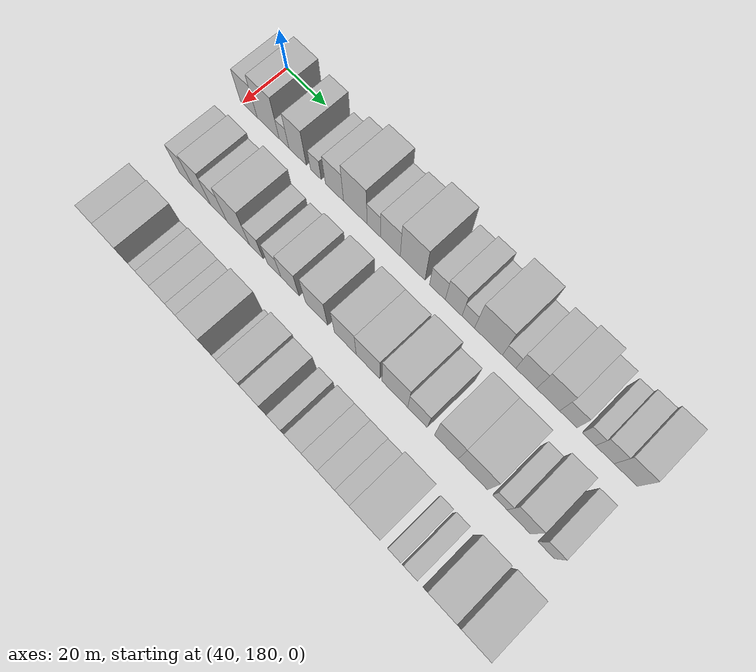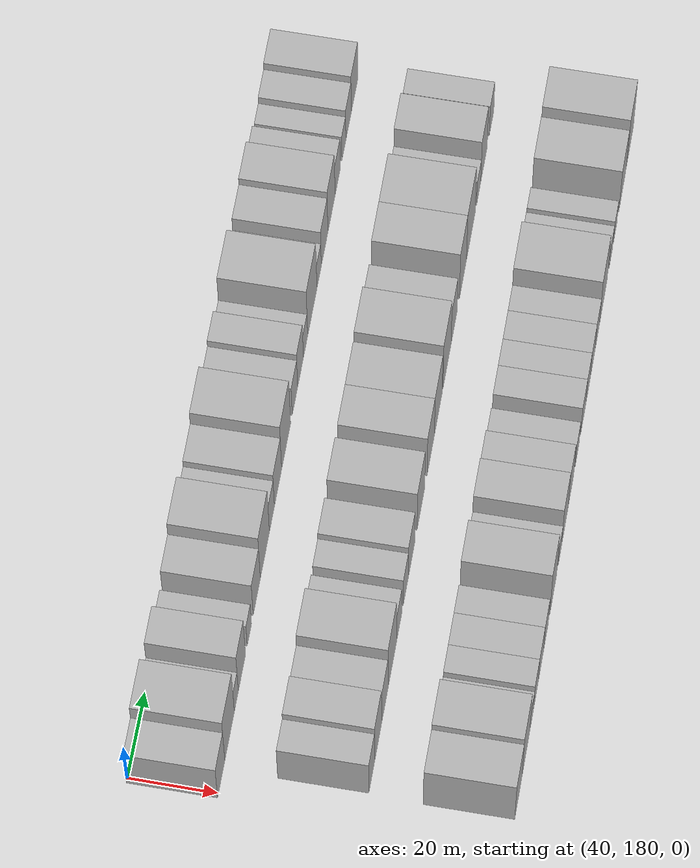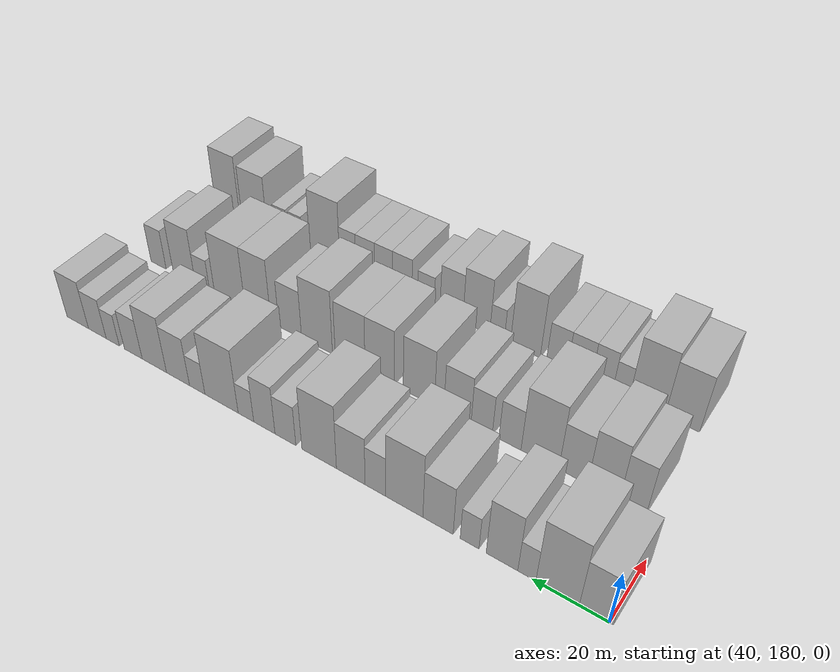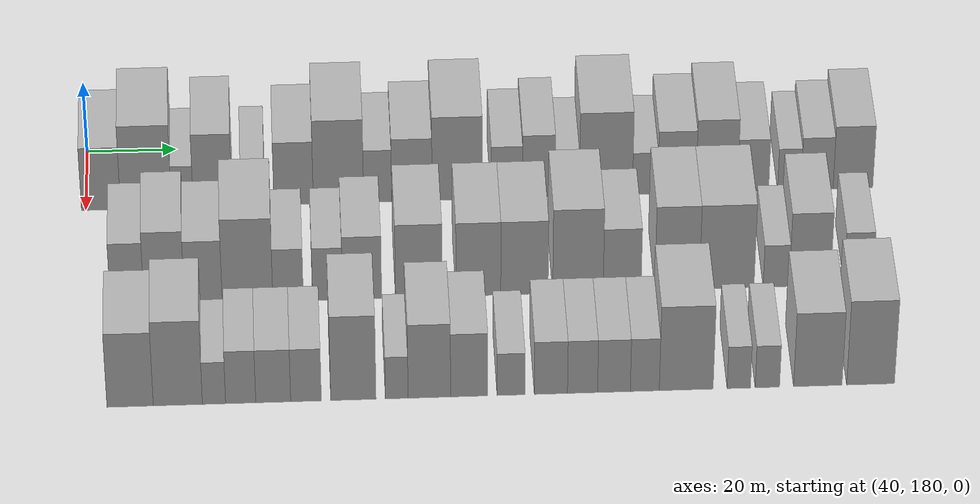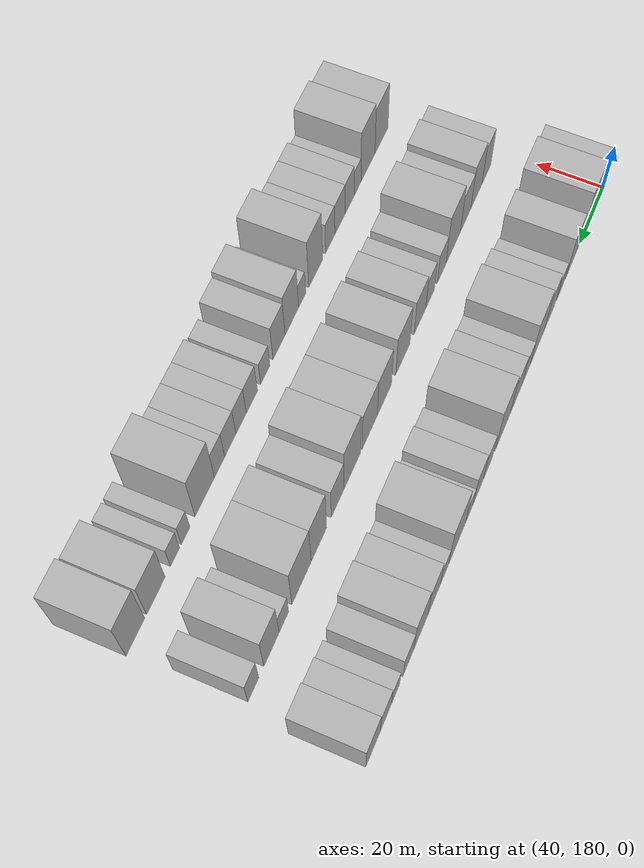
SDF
<sdf version="1.6">
 <world name="default">
  <model name="building_60">
   <static>1</static>
   <pose>50.0000 183.2740 0 0.000000 0.000000 0.000000</pose>
   <link name="link">
    <pose>0 0 9.00 0 0 0</pose>
    <collision name="collision"><geometry><box><size>20.0000 8.6550 18.0000</size></box></geometry></collision>
    <visual name="visual">
     <cast_shadows>0</cast_shadows>
     <geometry><box><size>20.0000 8.6550 18.0000</size></box></geometry>
     <material>
      <script>
       <uri>model://HANNAS_wall/materials/scripts</uri>
       <uri>model://HANNAS_wall/materials/textures</uri>
       <name>vrc/HANNAS_wall</name>
      </script>
     </material>
    </visual>
   </link>
  </model>
  <model name="building_61">
   <static>1</static>
   <pose>50.0000 193.2526 0 0.000000 0.000000 0.000000</pose>
   <link name="link">
    <pose>0 0 12.00 0 0 0</pose>
    <collision name="collision"><geometry><box><size>20.0000 11.3021 24.0000</size></box></geometry></collision>
    <visual name="visual">
     <cast_shadows>0</cast_shadows>
     <geometry><box><size>20.0000 11.3021 24.0000</size></box></geometry>
     <material>
      <script>
       <uri>model://HANNAS_wall/materials/scripts</uri>
       <uri>model://HANNAS_wall/materials/textures</uri>
       <name>vrc/HANNAS_wall</name>
      </script>
     </material>
    </visual>
   </link>
  </model>
  <model name="building_62">
   <static>1</static>
   <pose>50.0000 201.3147 0 0.000000 0.000000 0.000000</pose>
   <link name="link">
    <pose>0 0 6.00 0 0 0</pose>
    <collision name="collision"><geometry><box><size>20.0000 4.8221 12.0000</size></box></geometry></collision>
    <visual name="visual">
     <cast_shadows>0</cast_shadows>
     <geometry><box><size>20.0000 4.8221 12.0000</size></box></geometry>
     <material>
      <script>
       <uri>model://HANNAS_wall/materials/scripts</uri>
       <uri>model://HANNAS_wall/materials/textures</uri>
       <name>vrc/HANNAS_wall</name>
      </script>
     </material>
    </visual>
   </link>
  </model>
  <model name="building_63">
   <static>1</static>
   <pose>50.0000 208.0464 0 0.000000 0.000000 0.000000</pose>
   <link name="link">
    <pose>0 0 10.50 0 0 0</pose>
    <collision name="collision"><geometry><box><size>20.0000 8.6414 21.0000</size></box></geometry></collision>
    <visual name="visual">
     <cast_shadows>0</cast_shadows>
     <geometry><box><size>20.0000 8.6414 21.0000</size></box></geometry>
     <material>
      <script>
       <uri>model://HANNAS_wall/materials/scripts</uri>
       <uri>model://HANNAS_wall/materials/textures</uri>
       <name>vrc/HANNAS_wall</name>
      </script>
     </material>
    </visual>
   </link>
  </model>
  <model name="building_64">
   <static>1</static>
   <pose>50.0000 217.0051 0 0.000000 0.000000 0.000000</pose>
   <link name="link">
    <pose>0 0 6.00 0 0 0</pose>
    <collision name="collision"><geometry><box><size>20.0000 5.2760 12.0000</size></box></geometry></collision>
    <visual name="visual">
     <cast_shadows>0</cast_shadows>
     <geometry><box><size>20.0000 5.2760 12.0000</size></box></geometry>
     <material>
      <script>
       <uri>model://HANNAS_wall/materials/scripts</uri>
       <uri>model://HANNAS_wall/materials/textures</uri>
       <name>vrc/HANNAS_wall</name>
      </script>
     </material>
    </visual>
   </link>
  </model>
  <model name="building_65">
   <static>1</static>
   <pose>50.0000 226.0107 0 0.000000 0.000000 0.000000</pose>
   <link name="link">
    <pose>0 0 9.00 0 0 0</pose>
    <collision name="collision"><geometry><box><size>20.0000 8.7353 18.0000</size></box></geometry></collision>
    <visual name="visual">
     <cast_shadows>0</cast_shadows>
     <geometry><box><size>20.0000 8.7353 18.0000</size></box></geometry>
     <material>
      <script>
       <uri>model://HANNAS_wall/materials/scripts</uri>
       <uri>model://HANNAS_wall/materials/textures</uri>
       <name>vrc/HANNAS_wall</name>
      </script>
     </material>
    </visual>
   </link>
  </model>
  <model name="building_66">
   <static>1</static>
   <pose>50.0000 235.9674 0 0.000000 0.000000 0.000000</pose>
   <link name="link">
    <pose>0 0 12.00 0 0 0</pose>
    <collision name="collision"><geometry><box><size>20.0000 11.1779 24.0000</size></box></geometry></collision>
    <visual name="visual">
     <cast_shadows>0</cast_shadows>
     <geometry><box><size>20.0000 11.1779 24.0000</size></box></geometry>
     <material>
      <script>
       <uri>model://HANNAS_wall/materials/scripts</uri>
       <uri>model://HANNAS_wall/materials/textures</uri>
       <name>vrc/HANNAS_wall</name>
      </script>
     </material>
    </visual>
   </link>
  </model>
  <model name="building_67">
   <static>1</static>
   <pose>50.0000 244.6649 0 0.000000 0.000000 0.000000</pose>
   <link name="link">
    <pose>0 0 7.50 0 0 0</pose>
    <collision name="collision"><geometry><box><size>20.0000 6.2172 15.0000</size></box></geometry></collision>
    <visual name="visual">
     <cast_shadows>0</cast_shadows>
     <geometry><box><size>20.0000 6.2172 15.0000</size></box></geometry>
     <material>
      <script>
       <uri>model://HANNAS_wall/materials/scripts</uri>
       <uri>model://HANNAS_wall/materials/textures</uri>
       <name>vrc/HANNAS_wall</name>
      </script>
     </material>
    </visual>
   </link>
  </model>
  <model name="building_68">
   <static>1</static>
   <pose>50.0000 252.2728 0 0.000000 0.000000 0.000000</pose>
   <link name="link">
    <pose>0 0 9.00 0 0 0</pose>
    <collision name="collision"><geometry><box><size>20.0000 8.9987 18.0000</size></box></geometry></collision>
    <visual name="visual">
     <cast_shadows>0</cast_shadows>
     <geometry><box><size>20.0000 8.9987 18.0000</size></box></geometry>
     <material>
      <script>
       <uri>model://HANNAS_wall/materials/scripts</uri>
       <uri>model://HANNAS_wall/materials/textures</uri>
       <name>vrc/HANNAS_wall</name>
      </script>
     </material>
    </visual>
   </link>
  </model>
  <model name="building_69">
   <static>1</static>
   <pose>50.0000 262.3515 0 0.000000 0.000000 0.000000</pose>
   <link name="link">
    <pose>0 0 12.00 0 0 0</pose>
    <collision name="collision"><geometry><box><size>20.0000 11.1586 24.0000</size></box></geometry></collision>
    <visual name="visual">
     <cast_shadows>0</cast_shadows>
     <geometry><box><size>20.0000 11.1586 24.0000</size></box></geometry>
     <material>
      <script>
       <uri>model://HANNAS_wall/materials/scripts</uri>
       <uri>model://HANNAS_wall/materials/textures</uri>
       <name>vrc/HANNAS_wall</name>
      </script>
     </material>
    </visual>
   </link>
  </model>
  <model name="building_70">
   <static>1</static>
   <pose>50.0000 273.4029 0 0.000000 0.000000 0.000000</pose>
   <link name="link">
    <pose>0 0 7.50 0 0 0</pose>
    <collision name="collision"><geometry><box><size>20.0000 6.9441 15.0000</size></box></geometry></collision>
    <visual name="visual">
     <cast_shadows>0</cast_shadows>
     <geometry><box><size>20.0000 6.9441 15.0000</size></box></geometry>
     <material>
      <script>
       <uri>model://HANNAS_wall/materials/scripts</uri>
       <uri>model://HANNAS_wall/materials/textures</uri>
       <name>vrc/HANNAS_wall</name>
      </script>
     </material>
    </visual>
   </link>
  </model>
  <model name="building_71">
   <static>1</static>
   <pose>50.0000 280.5089 0 0.000000 0.000000 0.000000</pose>
   <link name="link">
    <pose>0 0 9.00 0 0 0</pose>
    <collision name="collision"><geometry><box><size>20.0000 7.2680 18.0000</size></box></geometry></collision>
    <visual name="visual">
     <cast_shadows>0</cast_shadows>
     <geometry><box><size>20.0000 7.2680 18.0000</size></box></geometry>
     <material>
      <script>
       <uri>model://HANNAS_wall/materials/scripts</uri>
       <uri>model://HANNAS_wall/materials/textures</uri>
       <name>vrc/HANNAS_wall</name>
      </script>
     </material>
    </visual>
   </link>
  </model>
  <model name="building_72">
   <static>1</static>
   <pose>50.0000 286.8468 0 0.000000 0.000000 0.000000</pose>
   <link name="link">
    <pose>0 0 6.00 0 0 0</pose>
    <collision name="collision"><geometry><box><size>20.0000 5.4077 12.0000</size></box></geometry></collision>
    <visual name="visual">
     <cast_shadows>0</cast_shadows>
     <geometry><box><size>20.0000 5.4077 12.0000</size></box></geometry>
     <material>
      <script>
       <uri>model://HANNAS_wall/materials/scripts</uri>
       <uri>model://HANNAS_wall/materials/textures</uri>
       <name>vrc/HANNAS_wall</name>
      </script>
     </material>
    </visual>
   </link>
  </model>
  <model name="building_73">
   <static>1</static>
   <pose>50.0000 295.4719 0 0.000000 0.000000 0.000000</pose>
   <link name="link">
    <pose>0 0 12.00 0 0 0</pose>
    <collision name="collision"><geometry><box><size>20.0000 11.8426 24.0000</size></box></geometry></collision>
    <visual name="visual">
     <cast_shadows>0</cast_shadows>
     <geometry><box><size>20.0000 11.8426 24.0000</size></box></geometry>
     <material>
      <script>
       <uri>model://HANNAS_wall/materials/scripts</uri>
       <uri>model://HANNAS_wall/materials/textures</uri>
       <name>vrc/HANNAS_wall</name>
      </script>
     </material>
    </visual>
   </link>
  </model>
  <model name="building_74">
   <static>1</static>
   <pose>50.0000 304.2046 0 0.000000 0.000000 0.000000</pose>
   <link name="link">
    <pose>0 0 6.00 0 0 0</pose>
    <collision name="collision"><geometry><box><size>20.0000 5.6226 12.0000</size></box></geometry></collision>
    <visual name="visual">
     <cast_shadows>0</cast_shadows>
     <geometry><box><size>20.0000 5.6226 12.0000</size></box></geometry>
     <material>
      <script>
       <uri>model://HANNAS_wall/materials/scripts</uri>
       <uri>model://HANNAS_wall/materials/textures</uri>
       <name>vrc/HANNAS_wall</name>
      </script>
     </material>
    </visual>
   </link>
  </model>
  <model name="building_75">
   <static>1</static>
   <pose>50.0000 311.2909 0 0.000000 0.000000 0.000000</pose>
   <link name="link">
    <pose>0 0 9.00 0 0 0</pose>
    <collision name="collision"><geometry><box><size>20.0000 8.5500 18.0000</size></box></geometry></collision>
    <visual name="visual">
     <cast_shadows>0</cast_shadows>
     <geometry><box><size>20.0000 8.5500 18.0000</size></box></geometry>
     <material>
      <script>
       <uri>model://HANNAS_wall/materials/scripts</uri>
       <uri>model://HANNAS_wall/materials/textures</uri>
       <name>vrc/HANNAS_wall</name>
      </script>
     </material>
    </visual>
   </link>
  </model>
  <model name="building_76">
   <static>1</static>
   <pose>50.0000 320.2099 0 0.000000 0.000000 0.000000</pose>
   <link name="link">
    <pose>0 0 10.50 0 0 0</pose>
    <collision name="collision"><geometry><box><size>20.0000 9.2882 21.0000</size></box></geometry></collision>
    <visual name="visual">
     <cast_shadows>0</cast_shadows>
     <geometry><box><size>20.0000 9.2882 21.0000</size></box></geometry>
     <material>
      <script>
       <uri>model://HANNAS_wall/materials/scripts</uri>
       <uri>model://HANNAS_wall/materials/textures</uri>
       <name>vrc/HANNAS_wall</name>
      </script>
     </material>
    </visual>
   </link>
  </model>
  <model name="building_77">
   <static>1</static>
   <pose>50.0000 328.3287 0 0.000000 0.000000 0.000000</pose>
   <link name="link">
    <pose>0 0 7.50 0 0 0</pose>
    <collision name="collision"><geometry><box><size>20.0000 6.9493 15.0000</size></box></geometry></collision>
    <visual name="visual">
     <cast_shadows>0</cast_shadows>
     <geometry><box><size>20.0000 6.9493 15.0000</size></box></geometry>
     <material>
      <script>
       <uri>model://HANNAS_wall/materials/scripts</uri>
       <uri>model://HANNAS_wall/materials/textures</uri>
       <name>vrc/HANNAS_wall</name>
      </script>
     </material>
    </visual>
   </link>
  </model>
  <model name="building_78">
   <static>1</static>
   <pose>50.0000 336.4179 0 0.000000 0.000000 0.000000</pose>
   <link name="link">
    <pose>0 0 6.00 0 0 0</pose>
    <collision name="collision"><geometry><box><size>20.0000 5.2292 12.0000</size></box></geometry></collision>
    <visual name="visual">
     <cast_shadows>0</cast_shadows>
     <geometry><box><size>20.0000 5.2292 12.0000</size></box></geometry>
     <material>
      <script>
       <uri>model://HANNAS_wall/materials/scripts</uri>
       <uri>model://HANNAS_wall/materials/textures</uri>
       <name>vrc/HANNAS_wall</name>
      </script>
     </material>
    </visual>
   </link>
  </model>
  <model name="building_79">
   <static>1</static>
   <pose>50.0000 342.6247 0 0.000000 0.000000 0.000000</pose>
   <link name="link">
    <pose>0 0 7.50 0 0 0</pose>
    <collision name="collision"><geometry><box><size>20.0000 7.1845 15.0000</size></box></geometry></collision>
    <visual name="visual">
     <cast_shadows>0</cast_shadows>
     <geometry><box><size>20.0000 7.1845 15.0000</size></box></geometry>
     <material>
      <script>
       <uri>model://HANNAS_wall/materials/scripts</uri>
       <uri>model://HANNAS_wall/materials/textures</uri>
       <name>vrc/HANNAS_wall</name>
      </script>
     </material>
    </visual>
   </link>
  </model>
  <model name="building_80">
   <static>1</static>
   <pose>50.0000 350.6467 0 0.000000 0.000000 0.000000</pose>
   <link name="link">
    <pose>0 0 9.00 0 0 0</pose>
    <collision name="collision"><geometry><box><size>20.0000 8.8594 18.0000</size></box></geometry></collision>
    <visual name="visual">
     <cast_shadows>0</cast_shadows>
     <geometry><box><size>20.0000 8.8594 18.0000</size></box></geometry>
     <material>
      <script>
       <uri>model://HANNAS_wall/materials/scripts</uri>
       <uri>model://HANNAS_wall/materials/textures</uri>
       <name>vrc/HANNAS_wall</name>
      </script>
     </material>
    </visual>
   </link>
  </model>
  <model name="building_142">
   <static>1</static>
   <pose>82.0000 189.2211 0 0.000000 0.000000 0.000000</pose>
   <link name="link">
    <pose>0 0 9.00 0 0 0</pose>
    <collision name="collision"><geometry><box><size>20.0000 7.2849 18.0000</size></box></geometry></collision>
    <visual name="visual">
     <cast_shadows>0</cast_shadows>
     <geometry><box><size>20.0000 7.2849 18.0000</size></box></geometry>
     <material>
      <script>
       <uri>model://HANNAS_wall/materials/scripts</uri>
       <uri>model://HANNAS_wall/materials/textures</uri>
       <name>vrc/HANNAS_wall</name>
      </script>
     </material>
    </visual>
   </link>
  </model>
  <model name="building_143">
   <static>1</static>
   <pose>82.0000 197.2592 0 0.000000 0.000000 0.000000</pose>
   <link name="link">
    <pose>0 0 10.50 0 0 0</pose>
    <collision name="collision"><geometry><box><size>20.0000 8.7913 21.0000</size></box></geometry></collision>
    <visual name="visual">
     <cast_shadows>0</cast_shadows>
     <geometry><box><size>20.0000 8.7913 21.0000</size></box></geometry>
     <material>
      <script>
       <uri>model://HANNAS_wall/materials/scripts</uri>
       <uri>model://HANNAS_wall/materials/textures</uri>
       <name>vrc/HANNAS_wall</name>
      </script>
     </material>
    </visual>
   </link>
  </model>
  <model name="building_144">
   <static>1</static>
   <pose>82.0000 205.7654 0 0.000000 0.000000 0.000000</pose>
   <link name="link">
    <pose>0 0 9.00 0 0 0</pose>
    <collision name="collision"><geometry><box><size>20.0000 8.2211 18.0000</size></box></geometry></collision>
    <visual name="visual">
     <cast_shadows>0</cast_shadows>
     <geometry><box><size>20.0000 8.2211 18.0000</size></box></geometry>
     <material>
      <script>
       <uri>model://HANNAS_wall/materials/scripts</uri>
       <uri>model://HANNAS_wall/materials/textures</uri>
       <name>vrc/HANNAS_wall</name>
      </script>
     </material>
    </visual>
   </link>
  </model>
  <model name="building_145">
   <static>1</static>
   <pose>82.0000 215.3811 0 0.000000 0.000000 0.000000</pose>
   <link name="link">
    <pose>0 0 12.00 0 0 0</pose>
    <collision name="collision"><geometry><box><size>20.0000 11.0102 24.0000</size></box></geometry></collision>
    <visual name="visual">
     <cast_shadows>0</cast_shadows>
     <geometry><box><size>20.0000 11.0102 24.0000</size></box></geometry>
     <material>
      <script>
       <uri>model://HANNAS_wall/materials/scripts</uri>
       <uri>model://HANNAS_wall/materials/textures</uri>
       <name>vrc/HANNAS_wall</name>
      </script>
     </material>
    </visual>
   </link>
  </model>
  <model name="building_146">
   <static>1</static>
   <pose>82.0000 224.2107 0 0.000000 0.000000 0.000000</pose>
   <link name="link">
    <pose>0 0 7.50 0 0 0</pose>
    <collision name="collision"><geometry><box><size>20.0000 6.6491 15.0000</size></box></geometry></collision>
    <visual name="visual">
     <cast_shadows>0</cast_shadows>
     <geometry><box><size>20.0000 6.6491 15.0000</size></box></geometry>
     <material>
      <script>
       <uri>model://HANNAS_wall/materials/scripts</uri>
       <uri>model://HANNAS_wall/materials/textures</uri>
       <name>vrc/HANNAS_wall</name>
      </script>
     </material>
    </visual>
   </link>
  </model>
  <model name="building_147">
   <static>1</static>
   <pose>82.0000 232.8000 0 0.000000 0.000000 0.000000</pose>
   <link name="link">
    <pose>0 0 7.50 0 0 0</pose>
    <collision name="collision"><geometry><box><size>20.0000 6.5293 15.0000</size></box></geometry></collision>
    <visual name="visual">
     <cast_shadows>0</cast_shadows>
     <geometry><box><size>20.0000 6.5293 15.0000</size></box></geometry>
     <material>
      <script>
       <uri>model://HANNAS_wall/materials/scripts</uri>
       <uri>model://HANNAS_wall/materials/textures</uri>
       <name>vrc/HANNAS_wall</name>
      </script>
     </material>
    </visual>
   </link>
  </model>
  <model name="building_148">
   <static>1</static>
   <pose>82.0000 240.3248 0 0.000000 0.000000 0.000000</pose>
   <link name="link">
    <pose>0 0 9.00 0 0 0</pose>
    <collision name="collision"><geometry><box><size>20.0000 8.5203 18.0000</size></box></geometry></collision>
    <visual name="visual">
     <cast_shadows>0</cast_shadows>
     <geometry><box><size>20.0000 8.5203 18.0000</size></box></geometry>
     <material>
      <script>
       <uri>model://HANNAS_wall/materials/scripts</uri>
       <uri>model://HANNAS_wall/materials/textures</uri>
       <name>vrc/HANNAS_wall</name>
      </script>
     </material>
    </visual>
   </link>
  </model>
  <model name="building_149">
   <static>1</static>
   <pose>82.0000 252.6796 0 0.000000 0.000000 0.000000</pose>
   <link name="link">
    <pose>0 0 10.50 0 0 0</pose>
    <collision name="collision"><geometry><box><size>20.0000 10.1893 21.0000</size></box></geometry></collision>
    <visual name="visual">
     <cast_shadows>0</cast_shadows>
     <geometry><box><size>20.0000 10.1893 21.0000</size></box></geometry>
     <material>
      <script>
       <uri>model://HANNAS_wall/materials/scripts</uri>
       <uri>model://HANNAS_wall/materials/textures</uri>
       <name>vrc/HANNAS_wall</name>
      </script>
     </material>
    </visual>
   </link>
  </model>
  <model name="building_150">
   <static>1</static>
   <pose>82.0000 265.6639 0 0.000000 0.000000 0.000000</pose>
   <link name="link">
    <pose>0 0 10.50 0 0 0</pose>
    <collision name="collision"><geometry><box><size>20.0000 9.7793 21.0000</size></box></geometry></collision>
    <visual name="visual">
     <cast_shadows>0</cast_shadows>
     <geometry><box><size>20.0000 9.7793 21.0000</size></box></geometry>
     <material>
      <script>
       <uri>model://HANNAS_wall/materials/scripts</uri>
       <uri>model://HANNAS_wall/materials/textures</uri>
       <name>vrc/HANNAS_wall</name>
      </script>
     </material>
    </visual>
   </link>
  </model>
  <model name="building_151">
   <static>1</static>
   <pose>82.0000 275.7194 0 0.000000 0.000000 0.000000</pose>
   <link name="link">
    <pose>0 0 10.50 0 0 0</pose>
    <collision name="collision"><geometry><box><size>20.0000 10.3317 21.0000</size></box></geometry></collision>
    <visual name="visual">
     <cast_shadows>0</cast_shadows>
     <geometry><box><size>20.0000 10.3317 21.0000</size></box></geometry>
     <material>
      <script>
       <uri>model://HANNAS_wall/materials/scripts</uri>
       <uri>model://HANNAS_wall/materials/textures</uri>
       <name>vrc/HANNAS_wall</name>
      </script>
     </material>
    </visual>
   </link>
  </model>
  <model name="building_152">
   <static>1</static>
   <pose>82.0000 287.3985 0 0.000000 0.000000 0.000000</pose>
   <link name="link">
    <pose>0 0 12.00 0 0 0</pose>
    <collision name="collision"><geometry><box><size>20.0000 11.0266 24.0000</size></box></geometry></collision>
    <visual name="visual">
     <cast_shadows>0</cast_shadows>
     <geometry><box><size>20.0000 11.0266 24.0000</size></box></geometry>
     <material>
      <script>
       <uri>model://HANNAS_wall/materials/scripts</uri>
       <uri>model://HANNAS_wall/materials/textures</uri>
       <name>vrc/HANNAS_wall</name>
      </script>
     </material>
    </visual>
   </link>
  </model>
  <model name="building_153">
   <static>1</static>
   <pose>82.0000 297.0545 0 0.000000 0.000000 0.000000</pose>
   <link name="link">
    <pose>0 0 9.00 0 0 0</pose>
    <collision name="collision"><geometry><box><size>20.0000 8.2853 18.0000</size></box></geometry></collision>
    <visual name="visual">
     <cast_shadows>0</cast_shadows>
     <geometry><box><size>20.0000 8.2853 18.0000</size></box></geometry>
     <material>
      <script>
       <uri>model://HANNAS_wall/materials/scripts</uri>
       <uri>model://HANNAS_wall/materials/textures</uri>
       <name>vrc/HANNAS_wall</name>
      </script>
     </material>
    </visual>
   </link>
  </model>
  <model name="building_154">
   <static>1</static>
   <pose>82.0000 309.0769 0 0.000000 0.000000 0.000000</pose>
   <link name="link">
    <pose>0 0 12.00 0 0 0</pose>
    <collision name="collision"><geometry><box><size>20.0000 9.7596 24.0000</size></box></geometry></collision>
    <visual name="visual">
     <cast_shadows>0</cast_shadows>
     <geometry><box><size>20.0000 9.7596 24.0000</size></box></geometry>
     <material>
      <script>
       <uri>model://HANNAS_wall/materials/scripts</uri>
       <uri>model://HANNAS_wall/materials/textures</uri>
       <name>vrc/HANNAS_wall</name>
      </script>
     </material>
    </visual>
   </link>
  </model>
  <model name="building_155">
   <static>1</static>
   <pose>82.0000 319.9381 0 0.000000 0.000000 0.000000</pose>
   <link name="link">
    <pose>0 0 12.00 0 0 0</pose>
    <collision name="collision"><geometry><box><size>20.0000 11.9627 24.0000</size></box></geometry></collision>
    <visual name="visual">
     <cast_shadows>0</cast_shadows>
     <geometry><box><size>20.0000 11.9627 24.0000</size></box></geometry>
     <material>
      <script>
       <uri>model://HANNAS_wall/materials/scripts</uri>
       <uri>model://HANNAS_wall/materials/textures</uri>
       <name>vrc/HANNAS_wall</name>
      </script>
     </material>
    </visual>
   </link>
  </model>
  <model name="building_156">
   <static>1</static>
   <pose>82.0000 330.7693 0 0.000000 0.000000 0.000000</pose>
   <link name="link">
    <pose>0 0 6.00 0 0 0</pose>
    <collision name="collision"><geometry><box><size>20.0000 5.6998 12.0000</size></box></geometry></collision>
    <visual name="visual">
     <cast_shadows>0</cast_shadows>
     <geometry><box><size>20.0000 5.6998 12.0000</size></box></geometry>
     <material>
      <script>
       <uri>model://HANNAS_wall/materials/scripts</uri>
       <uri>model://HANNAS_wall/materials/textures</uri>
       <name>vrc/HANNAS_wall</name>
      </script>
     </material>
    </visual>
   </link>
  </model>
  <model name="building_157">
   <static>1</static>
   <pose>82.0000 338.1312 0 0.000000 0.000000 0.000000</pose>
   <link name="link">
    <pose>0 0 10.50 0 0 0</pose>
    <collision name="collision"><geometry><box><size>20.0000 9.0239 21.0000</size></box></geometry></collision>
    <visual name="visual">
     <cast_shadows>0</cast_shadows>
     <geometry><box><size>20.0000 9.0239 21.0000</size></box></geometry>
     <material>
      <script>
       <uri>model://HANNAS_wall/materials/scripts</uri>
       <uri>model://HANNAS_wall/materials/textures</uri>
       <name>vrc/HANNAS_wall</name>
      </script>
     </material>
    </visual>
   </link>
  </model>
  <model name="building_158">
   <static>1</static>
   <pose>82.0000 348.7981 0 0.000000 0.000000 0.000000</pose>
   <link name="link">
    <pose>0 0 7.50 0 0 0</pose>
    <collision name="collision"><geometry><box><size>20.0000 6.3099 15.0000</size></box></geometry></collision>
    <visual name="visual">
     <cast_shadows>0</cast_shadows>
     <geometry><box><size>20.0000 6.3099 15.0000</size></box></geometry>
     <material>
      <script>
       <uri>model://HANNAS_wall/materials/scripts</uri>
       <uri>model://HANNAS_wall/materials/textures</uri>
       <name>vrc/HANNAS_wall</name>
      </script>
     </material>
    </visual>
   </link>
  </model>
  <model name="building_215">
   <static>1</static>
   <pose>114.0000 189.9607 0 0.000000 0.000000 0.000000</pose>
   <link name="link">
    <pose>0 0 10.50 0 0 0</pose>
    <collision name="collision"><geometry><box><size>20.0000 9.8611 21.0000</size></box></geometry></collision>
    <visual name="visual">
     <cast_shadows>0</cast_shadows>
     <geometry><box><size>20.0000 9.8611 21.0000</size></box></geometry>
     <material>
      <script>
       <uri>model://HANNAS_wall/materials/scripts</uri>
       <uri>model://HANNAS_wall/materials/textures</uri>
       <name>vrc/HANNAS_wall</name>
      </script>
     </material>
    </visual>
   </link>
  </model>
  <model name="building_216">
   <static>1</static>
   <pose>114.0000 200.1226 0 0.000000 0.000000 0.000000</pose>
   <link name="link">
    <pose>0 0 12.00 0 0 0</pose>
    <collision name="collision"><geometry><box><size>20.0000 10.4627 24.0000</size></box></geometry></collision>
    <visual name="visual">
     <cast_shadows>0</cast_shadows>
     <geometry><box><size>20.0000 10.4627 24.0000</size></box></geometry>
     <material>
      <script>
       <uri>model://HANNAS_wall/materials/scripts</uri>
       <uri>model://HANNAS_wall/materials/textures</uri>
       <name>vrc/HANNAS_wall</name>
      </script>
     </material>
    </visual>
   </link>
  </model>
  <model name="building_217">
   <static>1</static>
   <pose>114.0000 207.8280 0 0.000000 0.000000 0.000000</pose>
   <link name="link">
    <pose>0 0 6.00 0 0 0</pose>
    <collision name="collision"><geometry><box><size>20.0000 4.9480 12.0000</size></box></geometry></collision>
    <visual name="visual">
     <cast_shadows>0</cast_shadows>
     <geometry><box><size>20.0000 4.9480 12.0000</size></box></geometry>
     <material>
      <script>
       <uri>model://HANNAS_wall/materials/scripts</uri>
       <uri>model://HANNAS_wall/materials/textures</uri>
       <name>vrc/HANNAS_wall</name>
      </script>
     </material>
    </visual>
   </link>
  </model>
  <model name="building_218">
   <static>1</static>
   <pose>114.0000 213.5138 0 0.000000 0.000000 0.000000</pose>
   <link name="link">
    <pose>0 0 7.50 0 0 0</pose>
    <collision name="collision"><geometry><box><size>20.0000 6.4236 15.0000</size></box></geometry></collision>
    <visual name="visual">
     <cast_shadows>0</cast_shadows>
     <geometry><box><size>20.0000 6.4236 15.0000</size></box></geometry>
     <material>
      <script>
       <uri>model://HANNAS_wall/materials/scripts</uri>
       <uri>model://HANNAS_wall/materials/textures</uri>
       <name>vrc/HANNAS_wall</name>
      </script>
     </material>
    </visual>
   </link>
  </model>
  <model name="building_219">
   <static>1</static>
   <pose>114.0000 220.4511 0 0.000000 0.000000 0.000000</pose>
   <link name="link">
    <pose>0 0 7.50 0 0 0</pose>
    <collision name="collision"><geometry><box><size>20.0000 7.4512 15.0000</size></box></geometry></collision>
    <visual name="visual">
     <cast_shadows>0</cast_shadows>
     <geometry><box><size>20.0000 7.4512 15.0000</size></box></geometry>
     <material>
      <script>
       <uri>model://HANNAS_wall/materials/scripts</uri>
       <uri>model://HANNAS_wall/materials/textures</uri>
       <name>vrc/HANNAS_wall</name>
      </script>
     </material>
    </visual>
   </link>
  </model>
  <model name="building_220">
   <static>1</static>
   <pose>114.0000 227.4508 0 0.000000 0.000000 0.000000</pose>
   <link name="link">
    <pose>0 0 7.50 0 0 0</pose>
    <collision name="collision"><geometry><box><size>20.0000 6.5481 15.0000</size></box></geometry></collision>
    <visual name="visual">
     <cast_shadows>0</cast_shadows>
     <geometry><box><size>20.0000 6.5481 15.0000</size></box></geometry>
     <material>
      <script>
       <uri>model://HANNAS_wall/materials/scripts</uri>
       <uri>model://HANNAS_wall/materials/textures</uri>
       <name>vrc/HANNAS_wall</name>
      </script>
     </material>
    </visual>
   </link>
  </model>
  <model name="building_221">
   <static>1</static>
   <pose>114.0000 237.5615 0 0.000000 0.000000 0.000000</pose>
   <link name="link">
    <pose>0 0 12.00 0 0 0</pose>
    <collision name="collision"><geometry><box><size>20.0000 9.6732 24.0000</size></box></geometry></collision>
    <visual name="visual">
     <cast_shadows>0</cast_shadows>
     <geometry><box><size>20.0000 9.6732 24.0000</size></box></geometry>
     <material>
      <script>
       <uri>model://HANNAS_wall/materials/scripts</uri>
       <uri>model://HANNAS_wall/materials/textures</uri>
       <name>vrc/HANNAS_wall</name>
      </script>
     </material>
    </visual>
   </link>
  </model>
  <model name="building_222">
   <static>1</static>
   <pose>114.0000 246.8128 0 0.000000 0.000000 0.000000</pose>
   <link name="link">
    <pose>0 0 6.00 0 0 0</pose>
    <collision name="collision"><geometry><box><size>20.0000 4.8295 12.0000</size></box></geometry></collision>
    <visual name="visual">
     <cast_shadows>0</cast_shadows>
     <geometry><box><size>20.0000 4.8295 12.0000</size></box></geometry>
     <material>
      <script>
       <uri>model://HANNAS_wall/materials/scripts</uri>
       <uri>model://HANNAS_wall/materials/textures</uri>
       <name>vrc/HANNAS_wall</name>
      </script>
     </material>
    </visual>
   </link>
  </model>
  <model name="building_223">
   <static>1</static>
   <pose>114.0000 253.7773 0 0.000000 0.000000 0.000000</pose>
   <link name="link">
    <pose>0 0 10.50 0 0 0</pose>
    <collision name="collision"><geometry><box><size>20.0000 9.0995 21.0000</size></box></geometry></collision>
    <visual name="visual">
     <cast_shadows>0</cast_shadows>
     <geometry><box><size>20.0000 9.0995 21.0000</size></box></geometry>
     <material>
      <script>
       <uri>model://HANNAS_wall/materials/scripts</uri>
       <uri>model://HANNAS_wall/materials/textures</uri>
       <name>vrc/HANNAS_wall</name>
      </script>
     </material>
    </visual>
   </link>
  </model>
  <model name="building_224">
   <static>1</static>
   <pose>114.0000 262.2913 0 0.000000 0.000000 0.000000</pose>
   <link name="link">
    <pose>0 0 9.00 0 0 0</pose>
    <collision name="collision"><geometry><box><size>20.0000 7.9286 18.0000</size></box></geometry></collision>
    <visual name="visual">
     <cast_shadows>0</cast_shadows>
     <geometry><box><size>20.0000 7.9286 18.0000</size></box></geometry>
     <material>
      <script>
       <uri>model://HANNAS_wall/materials/scripts</uri>
       <uri>model://HANNAS_wall/materials/textures</uri>
       <name>vrc/HANNAS_wall</name>
      </script>
     </material>
    </visual>
   </link>
  </model>
  <model name="building_225">
   <static>1</static>
   <pose>114.0000 271.2404 0 0.000000 0.000000 0.000000</pose>
   <link name="link">
    <pose>0 0 6.00 0 0 0</pose>
    <collision name="collision"><geometry><box><size>20.0000 5.9695 12.0000</size></box></geometry></collision>
    <visual name="visual">
     <cast_shadows>0</cast_shadows>
     <geometry><box><size>20.0000 5.9695 12.0000</size></box></geometry>
     <material>
      <script>
       <uri>model://HANNAS_wall/materials/scripts</uri>
       <uri>model://HANNAS_wall/materials/textures</uri>
       <name>vrc/HANNAS_wall</name>
      </script>
     </material>
    </visual>
   </link>
  </model>
  <model name="building_226">
   <static>1</static>
   <pose>114.0000 279.7763 0 0.000000 0.000000 0.000000</pose>
   <link name="link">
    <pose>0 0 7.50 0 0 0</pose>
    <collision name="collision"><geometry><box><size>20.0000 7.1024 15.0000</size></box></geometry></collision>
    <visual name="visual">
     <cast_shadows>0</cast_shadows>
     <geometry><box><size>20.0000 7.1024 15.0000</size></box></geometry>
     <material>
      <script>
       <uri>model://HANNAS_wall/materials/scripts</uri>
       <uri>model://HANNAS_wall/materials/textures</uri>
       <name>vrc/HANNAS_wall</name>
      </script>
     </material>
    </visual>
   </link>
  </model>
  <model name="building_227">
   <static>1</static>
   <pose>114.0000 286.5466 0 0.000000 0.000000 0.000000</pose>
   <link name="link">
    <pose>0 0 7.50 0 0 0</pose>
    <collision name="collision"><geometry><box><size>20.0000 6.4381 15.0000</size></box></geometry></collision>
    <visual name="visual">
     <cast_shadows>0</cast_shadows>
     <geometry><box><size>20.0000 6.4381 15.0000</size></box></geometry>
     <material>
      <script>
       <uri>model://HANNAS_wall/materials/scripts</uri>
       <uri>model://HANNAS_wall/materials/textures</uri>
       <name>vrc/HANNAS_wall</name>
      </script>
     </material>
    </visual>
   </link>
  </model>
  <model name="building_228">
   <static>1</static>
   <pose>114.0000 293.2724 0 0.000000 0.000000 0.000000</pose>
   <link name="link">
    <pose>0 0 7.50 0 0 0</pose>
    <collision name="collision"><geometry><box><size>20.0000 7.0136 15.0000</size></box></geometry></collision>
    <visual name="visual">
     <cast_shadows>0</cast_shadows>
     <geometry><box><size>20.0000 7.0136 15.0000</size></box></geometry>
     <material>
      <script>
       <uri>model://HANNAS_wall/materials/scripts</uri>
       <uri>model://HANNAS_wall/materials/textures</uri>
       <name>vrc/HANNAS_wall</name>
      </script>
     </material>
    </visual>
   </link>
  </model>
  <model name="building_229">
   <static>1</static>
   <pose>114.0000 299.8835 0 0.000000 0.000000 0.000000</pose>
   <link name="link">
    <pose>0 0 7.50 0 0 0</pose>
    <collision name="collision"><geometry><box><size>20.0000 6.2087 15.0000</size></box></geometry></collision>
    <visual name="visual">
     <cast_shadows>0</cast_shadows>
     <geometry><box><size>20.0000 6.2087 15.0000</size></box></geometry>
     <material>
      <script>
       <uri>model://HANNAS_wall/materials/scripts</uri>
       <uri>model://HANNAS_wall/materials/textures</uri>
       <name>vrc/HANNAS_wall</name>
      </script>
     </material>
    </visual>
   </link>
  </model>
  <model name="building_230">
   <static>1</static>
   <pose>114.0000 308.7580 0 0.000000 0.000000 0.000000</pose>
   <link name="link">
    <pose>0 0 12.00 0 0 0</pose>
    <collision name="collision"><geometry><box><size>20.0000 11.5403 24.0000</size></box></geometry></collision>
    <visual name="visual">
     <cast_shadows>0</cast_shadows>
     <geometry><box><size>20.0000 11.5403 24.0000</size></box></geometry>
     <material>
      <script>
       <uri>model://HANNAS_wall/materials/scripts</uri>
       <uri>model://HANNAS_wall/materials/textures</uri>
       <name>vrc/HANNAS_wall</name>
      </script>
     </material>
    </visual>
   </link>
  </model>
  <model name="building_231">
   <static>1</static>
   <pose>114.0000 320.0356 0 0.000000 0.000000 0.000000</pose>
   <link name="link">
    <pose>0 0 6.00 0 0 0</pose>
    <collision name="collision"><geometry><box><size>20.0000 5.0148 12.0000</size></box></geometry></collision>
    <visual name="visual">
     <cast_shadows>0</cast_shadows>
     <geometry><box><size>20.0000 5.0148 12.0000</size></box></geometry>
     <material>
      <script>
       <uri>model://HANNAS_wall/materials/scripts</uri>
       <uri>model://HANNAS_wall/materials/textures</uri>
       <name>vrc/HANNAS_wall</name>
      </script>
     </material>
    </visual>
   </link>
  </model>
  <model name="building_232">
   <static>1</static>
   <pose>114.0000 326.1631 0 0.000000 0.000000 0.000000</pose>
   <link name="link">
    <pose>0 0 6.00 0 0 0</pose>
    <collision name="collision"><geometry><box><size>20.0000 5.2402 12.0000</size></box></geometry></collision>
    <visual name="visual">
     <cast_shadows>0</cast_shadows>
     <geometry><box><size>20.0000 5.2402 12.0000</size></box></geometry>
     <material>
      <script>
       <uri>model://HANNAS_wall/materials/scripts</uri>
       <uri>model://HANNAS_wall/materials/textures</uri>
       <name>vrc/HANNAS_wall</name>
      </script>
     </material>
    </visual>
   </link>
  </model>
  <model name="building_233">
   <static>1</static>
   <pose>114.0000 336.9840 0 0.000000 0.000000 0.000000</pose>
   <link name="link">
    <pose>0 0 10.50 0 0 0</pose>
    <collision name="collision"><geometry><box><size>20.0000 10.4017 21.0000</size></box></geometry></collision>
    <visual name="visual">
     <cast_shadows>0</cast_shadows>
     <geometry><box><size>20.0000 10.4017 21.0000</size></box></geometry>
     <material>
      <script>
       <uri>model://HANNAS_wall/materials/scripts</uri>
       <uri>model://HANNAS_wall/materials/textures</uri>
       <name>vrc/HANNAS_wall</name>
      </script>
     </material>
    </visual>
   </link>
  </model>
  <model name="building_234">
   <static>1</static>
   <pose>114.0000 348.3170 0 0.000000 0.000000 0.000000</pose>
   <link name="link">
    <pose>0 0 12.00 0 0 0</pose>
    <collision name="collision"><geometry><box><size>20.0000 10.2642 24.0000</size></box></geometry></collision>
    <visual name="visual">
     <cast_shadows>0</cast_shadows>
     <geometry><box><size>20.0000 10.2642 24.0000</size></box></geometry>
     <material>
      <script>
       <uri>model://HANNAS_wall/materials/scripts</uri>
       <uri>model://HANNAS_wall/materials/textures</uri>
       <name>vrc/HANNAS_wall</name>
      </script>
     </material>
    </visual>
   </link>
  </model>
 </world>
</sdf>
